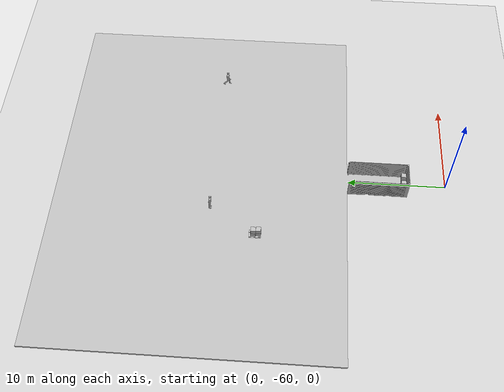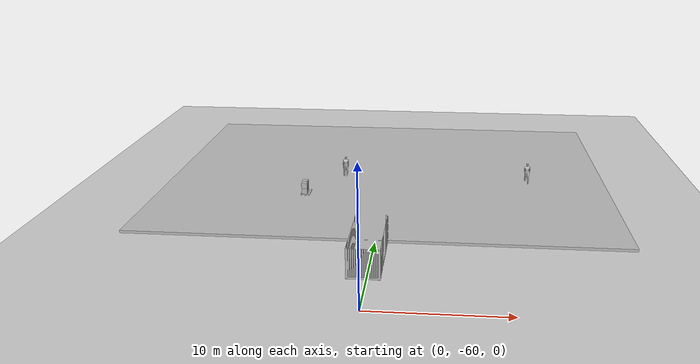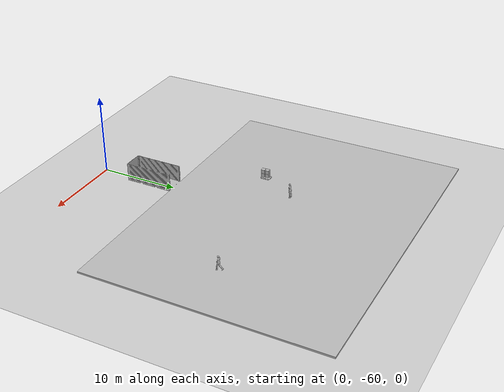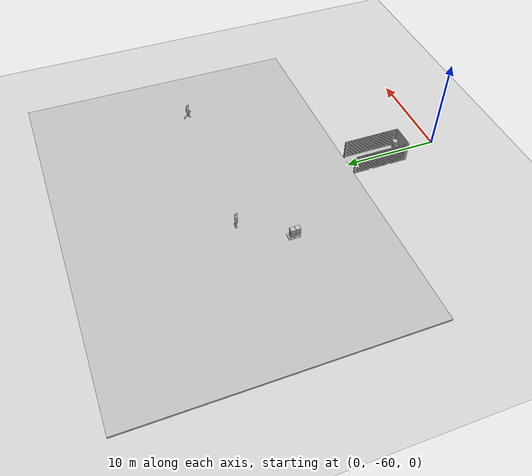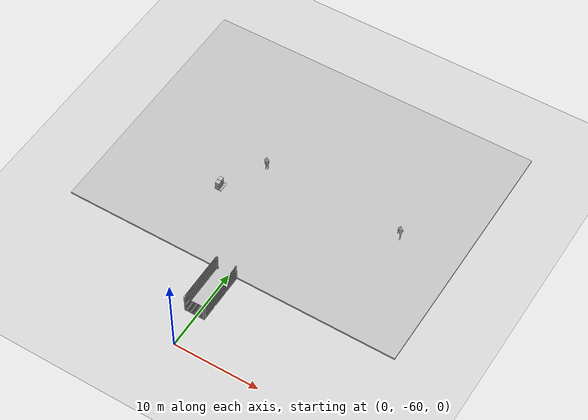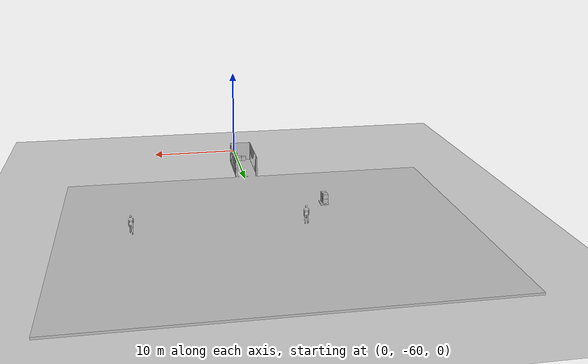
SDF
<sdf version="1.7">
 <world name="default">
  <light name="sun" type="directional">
   <pose>0 0 10 0 -0 0</pose>
   <diffuse>0.8 0.8 0.8 1</diffuse>
   <specular>0.2 0.2 0.2 1</specular>
   <attenuation>
    <range>1000</range>
    <constant>0.9</constant>
    <linear>0.01</linear>
    <quadratic>0.001</quadratic>
   </attenuation>
   <direction>-0.5 0.1 -0.9</direction>
   <spot><inner_angle>0</inner_angle><outer_angle>0</outer_angle><falloff>0</falloff></spot>
  </light>
  <model name="ground_plane">
   <static>1</static>
   <link name="link">
    <collision name="collision">
     <geometry><plane><normal>0 0 1</normal><size>100 100</size></plane></geometry>
     <surface>
      <contact><collide_bitmask>65535</collide_bitmask></contact>
      <friction><ode><mu>100</mu><mu2>50</mu2></ode></friction>
     </surface>
    </collision>
    <visual name="visual">
     <cast_shadows>0</cast_shadows>
     <geometry><plane><normal>0 0 1</normal><size>100 100</size></plane></geometry>
     <material>
      <script><uri>file://media/materials/scripts/gazebo.material</uri><name>Gazebo/Grey</name></script>
     </material>
    </visual>
   </link>
  </model>
  <gravity>0 0 -9.8</gravity>
  <magnetic_field>6e-06 2.3e-05 -4.2e-05</magnetic_field>
  <atmosphere type="adiabatic"/>
  <physics type="ode">
   <max_step_size>0.001</max_step_size>
   <real_time_factor>1</real_time_factor>
   <real_time_update_rate>1000</real_time_update_rate>
  </physics>
  <scene><ambient>0.4 0.4 0.4 1</ambient><background>0.7 0.7 0.7 1</background><shadows>1</shadows></scene>
  <spherical_coordinates>
   <surface_model>EARTH_WGS84</surface_model>
   <latitude_deg>0</latitude_deg>
   <longitude_deg>0</longitude_deg>
   <elevation>0</elevation>
   <heading_deg>0</heading_deg>
  </spherical_coordinates>
  <model name="euro_pallet">
   <link name="link">
    <pose>0 0 0.05 0 -0 0</pose>
    <inertial>
     <mass>20</mass>
     <inertia><ixx>2.43</ixx><ixy>0</ixy><ixz>0</ixz><iyy>1.1</iyy><iyz>0</iyz><izz>3.47</izz></inertia>
    </inertial>
    <collision name="collision">
     <pose>0 0 0.05 0 -0 0</pose>
     <geometry><mesh><uri>model://euro_pallet/meshes/pallet.dae</uri><scale>0.1 0.1 0.1</scale></mesh></geometry>
    </collision>
    <visual name="visual">
     <pose>0 0 0.05 0 -0 0</pose>
     <geometry><mesh><uri>model://euro_pallet/meshes/pallet.dae</uri><scale>0.1 0.1 0.1</scale></mesh></geometry>
    </visual>
   </link>
   <pose>-7.06546 -40.7663 0.245003 0 1.4e-05 3.5e-05</pose>
  </model>
  <model name="500x500x500_box_clone">
   <link name="link">
    <collision name="collision">
     <geometry>
      <mesh><scale>1 1 1</scale><uri>model://500x500x500_box/meshes/500x500x500_box_v2.dae</uri></mesh>
     </geometry>
    </collision>
    <visual name="visual">
     <geometry>
      <mesh><scale>1 1 1</scale><uri>model://500x500x500_box/meshes/500x500x500_box_v2.dae</uri></mesh>
     </geometry>
    </visual>
    <inertial>
     <inertia><ixx>1</ixx><ixy>0</ixy><ixz>0</ixz><iyy>1</iyy><iyz>0</iyz><izz>1</izz></inertia>
     <mass>1</mass>
    </inertial>
   </link>
   <pose>-7.154 -40.603 1.11726 5e-06 2e-05 0.000293</pose>
  </model>
  <model name="500x500x500_box_clone_clone">
   <link name="link">
    <collision name="collision">
     <geometry>
      <mesh><scale>1 1 1</scale><uri>model://500x500x500_box/meshes/500x500x500_box_v2.dae</uri></mesh>
     </geometry>
    </collision>
    <visual name="visual">
     <geometry>
      <mesh><scale>1 1 1</scale><uri>model://500x500x500_box/meshes/500x500x500_box_v2.dae</uri></mesh>
     </geometry>
    </visual>
    <inertial>
     <inertia><ixx>1</ixx><ixy>0</ixy><ixz>0</ixz><iyy>1</iyy><iyz>0</iyz><izz>1</izz></inertia>
     <mass>1</mass>
    </inertial>
   </link>
   <pose>-7.11159 -41.1179 1.11727 -1.8e-05 -0.00043 0.000893</pose>
  </model>
  <model name="500x500x500_box_clone_clone_clone_clone_clone_0">
   <link name="link">
    <collision name="collision">
     <geometry>
      <mesh><scale>1 1 1</scale><uri>model://500x500x500_box/meshes/500x500x500_box_v2.dae</uri></mesh>
     </geometry>
    </collision>
    <visual name="visual">
     <geometry>
      <mesh><scale>1 1 1</scale><uri>model://500x500x500_box/meshes/500x500x500_box_v2.dae</uri></mesh>
     </geometry>
    </visual>
    <inertial>
     <inertia><ixx>1</ixx><ixy>0</ixy><ixz>0</ixz><iyy>1</iyy><iyz>0</iyz><izz>1</izz></inertia>
     <mass>1</mass>
    </inertial>
   </link>
   <pose>-7.15885 -40.6008 0.617255 5e-06 1.9e-05 0.002612</pose>
  </model>
  <model name="500x500x500_box_clone_clone_clone_clone_clone_0_clone">
   <link name="link">
    <collision name="collision">
     <geometry>
      <mesh><scale>1 1 1</scale><uri>model://500x500x500_box/meshes/500x500x500_box_v2.dae</uri></mesh>
     </geometry>
    </collision>
    <visual name="visual">
     <geometry>
      <mesh><scale>1 1 1</scale><uri>model://500x500x500_box/meshes/500x500x500_box_v2.dae</uri></mesh>
     </geometry>
    </visual>
    <inertial>
     <inertia><ixx>1</ixx><ixy>0</ixy><ixz>0</ixz><iyy>1</iyy><iyz>0</iyz><izz>1</izz></inertia>
     <mass>1</mass>
    </inertial>
   </link>
   <pose>-7.10959 -41.1277 0.617268 -1.5e-05 -0.00043 0.002969</pose>
  </model>
  <model name="person_walking">
   <link name="link">
    <inertial>
     <pose>0 0 0.95 0 -0 0</pose>
     <mass>80</mass>
     <inertia><ixx>27.82</ixx><ixy>0</ixy><ixz>0</ixz><iyy>24.88</iyy><iyz>0</iyz><izz>4.57</izz></inertia>
    </inertial>
    <collision name="bottom">
     <pose>0 0 0.01 0 -0 0</pose>
     <geometry><box><size>0.35 0.75 0.02</size></box></geometry>
    </collision>
    <collision name="person">
     <pose>0 0 -0.02 0 -0 0</pose>
     <geometry><mesh><uri>model://person_walking/meshes/walking.dae</uri></mesh></geometry>
    </collision>
    <visual name="visual">
     <pose>0 0 -0.02 0 -0 0</pose>
     <geometry><mesh><uri>model://person_walking/meshes/walking.dae</uri></mesh></geometry>
    </visual>
   </link>
   <pose>12.6629 -36.4496 0.223007 0 -0 0</pose>
  </model>
  <model name="person_standing">
   <link name="link">
    <inertial>
     <pose>0 -0.1 0.95 0 -0 0</pose>
     <mass>80</mass>
     <inertia><ixx>24.88</ixx><ixy>0</ixy><ixz>0</ixz><iyy>25.73</iyy><iyz>0</iyz><izz>2.48</izz></inertia>
    </inertial>
    <collision name="bottom">
     <pose>0 -0.1 0.01 0 -0 0</pose>
     <geometry><box><size>0.5 0.35 0.02</size></box></geometry>
    </collision>
    <collision name="person">
     <pose>0 0 0.02 0.04 -0 0</pose>
     <geometry><mesh><uri>model://person_standing/meshes/standing.dae</uri></mesh></geometry>
    </collision>
    <visual name="visual">
     <pose>0 0 0.02 0.04 -0 0</pose>
     <geometry><mesh><uri>model://person_standing/meshes/standing.dae</uri></mesh></geometry>
    </visual>
   </link>
   <pose>-4.18233 -35.9676 0.233119 0.010825 0.028549 -0.021708</pose>
  </model>
  <model name="Warehouse_with_open_top_container">
   <static>1</static>
   <link name="link">
    <collision name="collision">
     <geometry>
      <mesh><uri>model://warehouse_03/meshes/warehouse_v05 v2.stl</uri><scale>0.001 0.001 0.001</scale></mesh>
     </geometry>
    </collision>
    <visual name="visual">
     <geometry>
      <mesh><uri>model://warehouse_03/meshes/warehouse_v05 v2.stl</uri><scale>0.001 0.001 0.001</scale></mesh>
     </geometry>
    </visual>
   </link>
   <pose>-0.266861 -49.8949 0 0 -0 0</pose>
  </model>
  <model name="500x500x500_box_clone_clone_0">
   <link name="link">
    <collision name="collision">
     <geometry>
      <mesh><scale>1 1 1</scale><uri>model://500x500x500_box/meshes/500x500x500_box_v2.dae</uri></mesh>
     </geometry>
    </collision>
    <visual name="visual">
     <geometry>
      <mesh><scale>1 1 1</scale><uri>model://500x500x500_box/meshes/500x500x500_box_v2.dae</uri></mesh>
     </geometry>
    </visual>
    <inertial>
     <inertia><ixx>1</ixx><ixy>0</ixy><ixz>0</ixz><iyy>1</iyy><iyz>0</iyz><izz>1</izz></inertia>
     <mass>1</mass>
    </inertial>
   </link>
   <pose>0.44671 -55.7031 0.472998 -1e-06 -0 2.4e-05</pose>
  </model>
  <model name="500x500x500_box_clone_clone_0_clone">
   <link name="link">
    <collision name="collision">
     <geometry>
      <mesh><scale>1 1 1</scale><uri>model://500x500x500_box/meshes/500x500x500_box_v2.dae</uri></mesh>
     </geometry>
    </collision>
    <visual name="visual">
     <geometry>
      <mesh><scale>1 1 1</scale><uri>model://500x500x500_box/meshes/500x500x500_box_v2.dae</uri></mesh>
     </geometry>
    </visual>
    <inertial>
     <inertia><ixx>1</ixx><ixy>0</ixy><ixz>0</ixz><iyy>1</iyy><iyz>0</iyz><izz>1</izz></inertia>
     <mass>1</mass>
    </inertial>
   </link>
   <pose>-0.09953 -55.6959 0.473007 -0 -0 -1e-06</pose>
  </model>
  <model name="500x500x500_box_clone_clone_0_clone_clone">
   <link name="link">
    <collision name="collision">
     <geometry>
      <mesh><scale>1 1 1</scale><uri>model://500x500x500_box/meshes/500x500x500_box_v2.dae</uri></mesh>
     </geometry>
    </collision>
    <visual name="visual">
     <geometry>
      <mesh><scale>1 1 1</scale><uri>model://500x500x500_box/meshes/500x500x500_box_v2.dae</uri></mesh>
     </geometry>
    </visual>
    <inertial>
     <inertia><ixx>1</ixx><ixy>0</ixy><ixz>0</ixz><iyy>1</iyy><iyz>0</iyz><izz>1</izz></inertia>
     <mass>1</mass>
    </inertial>
   </link>
   <pose>-0.628091 -55.6947 0.473007 0 -2e-06 -1e-06</pose>
  </model>
  <model name="500x500x500_box_clone_clone_0_clone_clone_clone">
   <link name="link">
    <collision name="collision">
     <geometry>
      <mesh><scale>1 1 1</scale><uri>model://500x500x500_box/meshes/500x500x500_box_v2.dae</uri></mesh>
     </geometry>
    </collision>
    <visual name="visual">
     <geometry>
      <mesh><scale>1 1 1</scale><uri>model://500x500x500_box/meshes/500x500x500_box_v2.dae</uri></mesh>
     </geometry>
    </visual>
    <inertial>
     <inertia><ixx>1</ixx><ixy>0</ixy><ixz>0</ixz><iyy>1</iyy><iyz>0</iyz><izz>1</izz></inertia>
     <mass>1</mass>
    </inertial>
   </link>
   <pose>0.449886 -55.6272 0.973007 -3e-06 -1e-06 -5.2e-05</pose>
  </model>
 </world>
</sdf>
